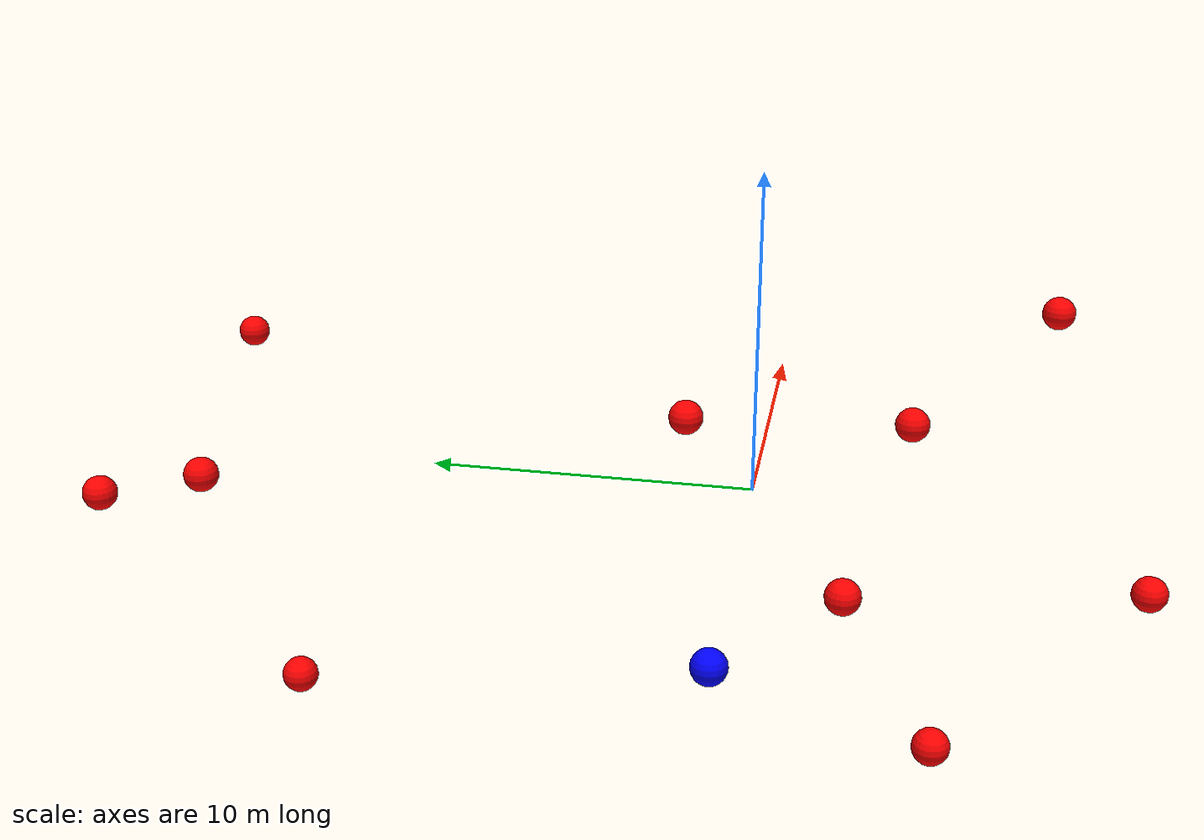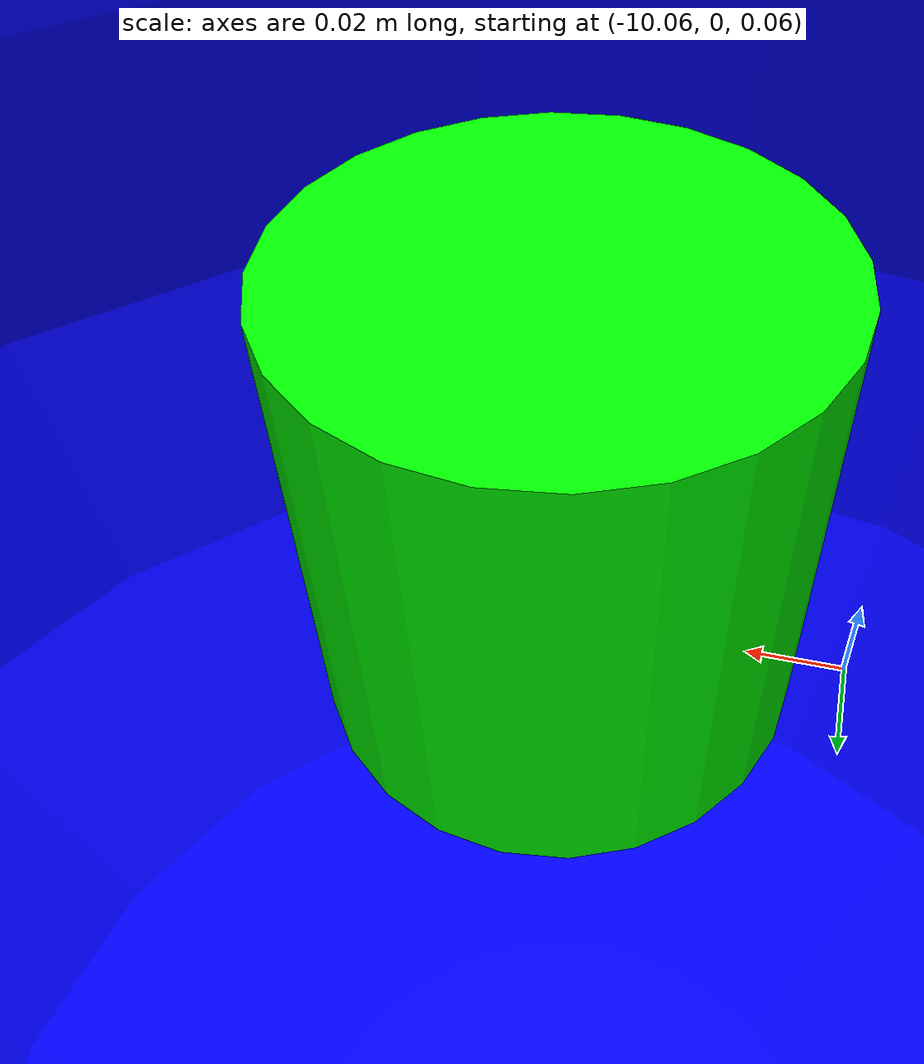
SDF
<?xml version="1.0" ?>
<sdf version="1.8">
    <world name="3d_world">
        <physics name="1ms" type="ode">
            <max_step_size>0.001</max_step_size>
            <real_time_factor>1.0</real_time_factor>
            <real_time_update_rate>1000.0</real_time_update_rate>
        </physics>
        <gravity>0 0 0</gravity>

        <plugin
            filename="gz-sim-physics-system"
            name="gz::sim::v8::systems::Physics">
        </plugin>
        <plugin
            filename="libignition-gazebo-user-commands-system.so"
            name="ignition::gazebo::systems::UserCommands">
        </plugin>
        <plugin
            filename="gz-sim-scene-broadcaster-system"
            name="gz::sim::systems::SceneBroadcaster">
        </plugin>
        <plugin
            filename="gz-sim-sensors-system"
            name="gz::sim::systems::Sensors">
            <render_engine>ogre2</render_engine>
        </plugin>

        <light type="directional" name="sun">
            <cast_shadows>true</cast_shadows>
            <pose>0 0 10 0 0 0</pose>
            <diffuse>0.8 0.8 0.8 1</diffuse>
            <specular>0.2 0.2 0.2 1</specular>
            <attenuation>
                <range>1000</range>
                <constant>0.9</constant>
                <linear>0.01</linear>
                <quadratic>0.001</quadratic>
            </attenuation>
            <direction>-0.5 0.1 -0.9</direction>
        </light>

        <!-- AGENTE -->
        <model name='agente' canonical_link='chassis'>
            <pose relative_to='world'>-10.0 0 0.0 0 0 0</pose>
            <link name='chassis'>
                <pose relative_to='__model__'>0.0 0 0.0 0 0 0</pose>
                <inertial>
                    <mass>1.14395</mass>
                    <inertia>
                        <ixx>0.095329</ixx>
                        <ixy>0</ixy>
                        <ixz>0</ixz>
                        <iyy>0.381317</iyy>
                        <iyz>0</iyz>
                        <izz>0.476646</izz>
                    </inertia>
                </inertial>
                <visual name='visual'>
                    <geometry>
                        <sphere>
                            <radius>0.5</radius>
                        </sphere>
                    </geometry>
                    <material>
                        <ambient>0.0 0.0 1.0 1</ambient>
                        <diffuse>0.0 0.0 1.0 1</diffuse>
                        <specular>0.0 0.0 1.0 1</specular>
                    </material>
                </visual>
                <collision name='collision'>
                    <geometry>
                        <sphere>
                            <radius>0.5</radius>
                        </sphere>
                    </geometry>
                </collision>
                <enable_gravity>false</enable_gravity>
            </link>

            <link name='lidar_link'>
                <pose relative_to='chassis'>0.0 0 0.1 0 0 0</pose>
                <inertial>
                    <mass>0.1</mass>
                    <inertia>
                        <ixx>0.000166667</ixx>
                        <iyy>0.000166667</iyy>
                        <izz>0.000166667</izz>
                    </inertia>
                </inertial>
                <collision name='collision'>
                    <geometry>
                        <cylinder>
                            <radius>0.05</radius>
                            <length>0.1</length>
                        </cylinder>
                    </geometry>
                </collision>
                <visual name='visual'>
                    <geometry>
                        <cylinder>
                            <radius>0.05</radius>
                            <length>0.1</length>
                        </cylinder>
                    </geometry>
                    <material>
                        <ambient>0.0 1.0 0.0 1</ambient>
                        <diffuse>0.0 1.0 0.0 1</diffuse>
                        <specular>0.0 1.0 0.0 1</specular>
                    </material>
                </visual>
                <sensor name="lidar" type="gpu_lidar">
                    <topic>scan</topic>
                    <update_rate>10</update_rate>
                    <lidar>
                        <scan>
                            <horizontal>
                                <samples>5000</samples>
                                <resolution>1</resolution>
                                <min_angle>-3.14159</min_angle>
                                <max_angle>3.14159</max_angle>
                            </horizontal>
                        </scan>
                        <range>
                            <min>0.1</min>
                            <max>10.0</max>
                            <resolution>0.01</resolution>
                        </range>
                    </lidar>
                    <visualize>true</visualize>
                    <always_on>true</always_on>
                    <update_rate>10</update_rate>
                    <pose_frame>lidar</pose_frame>
                </sensor>
                <enable_gravity>false</enable_gravity>
            </link>

            <joint name="lidar_joint" type="fixed">
                <parent>chassis</parent>
                <child>lidar_link</child>
            </joint>

            <plugin
                filename="ignition-gazebo-joint-state-publisher-system"
                name="ignition::gazebo::systems::JointStatePublisher">
            </plugin>
            <plugin
                filename="ignition-gazebo-odometry-publisher-system"
                name="ignition::gazebo::systems::OdometryPublisher">
                <dimensions>3</dimensions>
            </plugin>
            <plugin
                filename="ignition-gazebo-velocity-control-system"
                name="ignition::gazebo::systems::VelocityControl">
                <initial_linear>0.0 0 0</initial_linear>
                <initial_angular>0 0 0.0</initial_angular>
            </plugin>
            <plugin
                filename="libignition-gazebo-pose-publisher-system.so"
                name="ignition::gazebo::systems::PosePublisher">
                <topic>/agente/pose</topic>
                <frame_id>agente</frame_id>
                <update_rate>30</update_rate>
            </plugin>
        </model>

        <!-- OBSTACLE 1 -->
        <model name='obstacle_1' canonical_link='obstacle'>
            <static>false</static>
            <pose relative_to='world'>-6.23 18.12 1.35 0 0 0</pose>
            <link name='obstacle'>
                <pose relative_to='__model__'>0.0 0 0.0 0 0 0</pose>
                <visual name='visual'>
                    <geometry>
                        <sphere>
                            <radius>0.50</radius>
                        </sphere>
                    </geometry>
                    <material>
                        <ambient>1.0 0.0 0.0 1</ambient>
                        <diffuse>1.0 0.0 0.0 1</diffuse>
                        <specular>1.0 0.0 0.0 1</specular>
                    </material>
                </visual>
                <collision name='collision'>
                    <geometry>
                        <sphere>
                            <radius>0.50</radius>
                        </sphere>
                    </geometry>
                </collision>
                <enable_gravity>false</enable_gravity>
            </link>

            <plugin
                filename="ignition-gazebo-velocity-control-system"
                name="ignition::gazebo::systems::VelocityControl">
                <initial_linear>0.86 -1.80 -0.13</initial_linear>
                <initial_angular>0 0 0</initial_angular>
            </plugin>

            <plugin
                filename="ignition-gazebo-odometry-publisher-system"
                name="ignition::gazebo::systems::OdometryPublisher">
                <dimensions>3</dimensions>
            </plugin>
        </model>

        <!-- OBSTACLE 2 -->
        <model name='obstacle_2' canonical_link='obstacle'>
            <static>false</static>
            <pose relative_to='world'>-8.18 11.71 -2.77 0 0 0</pose>
            <link name='obstacle'>
                <pose relative_to='__model__'>0.0 0 0.0 0 0 0</pose>
                <visual name='visual'>
                    <geometry>
                        <sphere>
                            <radius>0.50</radius>
                        </sphere>
                    </geometry>
                    <material>
                        <ambient>1.0 0.0 0.0 1</ambient>
                        <diffuse>1.0 0.0 0.0 1</diffuse>
                        <specular>1.0 0.0 0.0 1</specular>
                    </material>
                </visual>
                <collision name='collision'>
                    <geometry>
                        <sphere>
                            <radius>0.50</radius>
                        </sphere>
                    </geometry>
                </collision>
                <enable_gravity>false</enable_gravity>
            </link>

            <plugin
                filename="ignition-gazebo-velocity-control-system"
                name="ignition::gazebo::systems::VelocityControl">
                <initial_linear>0.93 -1.72 0.41</initial_linear>
                <initial_angular>0 0 0</initial_angular>
            </plugin>

            <plugin
                filename="ignition-gazebo-odometry-publisher-system"
                name="ignition::gazebo::systems::OdometryPublisher">
                <dimensions>3</dimensions>
            </plugin>
        </model>

        <!-- OBSTACLE 3 -->
        <model name='obstacle_3' canonical_link='obstacle'>
            <static>false</static>
            <pose relative_to='world'>4.79 17.65 2.06 0 0 0</pose>
            <link name='obstacle'>
                <pose relative_to='__model__'>0.0 0 0.0 0 0 0</pose>
                <visual name='visual'>
                    <geometry>
                        <sphere>
                            <radius>0.50</radius>
                        </sphere>
                    </geometry>
                    <material>
                        <ambient>1.0 0.0 0.0 1</ambient>
                        <diffuse>1.0 0.0 0.0 1</diffuse>
                        <specular>1.0 0.0 0.0 1</specular>
                    </material>
                </visual>
                <collision name='collision'>
                    <geometry>
                        <sphere>
                            <radius>0.50</radius>
                        </sphere>
                    </geometry>
                </collision>
                <enable_gravity>false</enable_gravity>
            </link>

            <plugin
                filename="ignition-gazebo-velocity-control-system"
                name="ignition::gazebo::systems::VelocityControl">
                <initial_linear>-0.62 -1.89 -0.22</initial_linear>
                <initial_angular>0 0 0</initial_angular>
            </plugin>

            <plugin
                filename="ignition-gazebo-odometry-publisher-system"
                name="ignition::gazebo::systems::OdometryPublisher">
                <dimensions>3</dimensions>
            </plugin>
        </model>

        <!-- OBSTACLE 4 -->
        <model name='obstacle_4' canonical_link='obstacle'>
            <static>false</static>
            <pose relative_to='world'>-4.27 -11.30 0.02 0 0 0</pose>
            <link name='obstacle'>
                <pose relative_to='__model__'>0.0 0 0.0 0 0 0</pose>
                <visual name='visual'>
                    <geometry>
                        <sphere>
                            <radius>0.50</radius>
                        </sphere>
                    </geometry>
                    <material>
                        <ambient>1.0 0.0 0.0 1</ambient>
                        <diffuse>1.0 0.0 0.0 1</diffuse>
                        <specular>1.0 0.0 0.0 1</specular>
                    </material>
                </visual>
                <collision name='collision'>
                    <geometry>
                        <sphere>
                            <radius>0.50</radius>
                        </sphere>
                    </geometry>
                </collision>
                <enable_gravity>false</enable_gravity>
            </link>

            <plugin
                filename="ignition-gazebo-velocity-control-system"
                name="ignition::gazebo::systems::VelocityControl">
                <initial_linear>0.89 1.79 -0.00</initial_linear>
                <initial_angular>0 0 0</initial_angular>
            </plugin>

            <plugin
                filename="ignition-gazebo-odometry-publisher-system"
                name="ignition::gazebo::systems::OdometryPublisher">
                <dimensions>3</dimensions>
            </plugin>
        </model>

        <!-- OBSTACLE 5 -->
        <model name='obstacle_5' canonical_link='obstacle'>
            <static>false</static>
            <pose relative_to='world'>-5.82 15.15 2.01 0 0 0</pose>
            <link name='obstacle'>
                <pose relative_to='__model__'>0.0 0 0.0 0 0 0</pose>
                <visual name='visual'>
                    <geometry>
                        <sphere>
                            <radius>0.50</radius>
                        </sphere>
                    </geometry>
                    <material>
                        <ambient>1.0 0.0 0.0 1</ambient>
                        <diffuse>1.0 0.0 0.0 1</diffuse>
                        <specular>1.0 0.0 0.0 1</specular>
                    </material>
                </visual>
                <collision name='collision'>
                    <geometry>
                        <sphere>
                            <radius>0.50</radius>
                        </sphere>
                    </geometry>
                </collision>
                <enable_gravity>false</enable_gravity>
            </link>

            <plugin
                filename="ignition-gazebo-velocity-control-system"
                name="ignition::gazebo::systems::VelocityControl">
                <initial_linear>0.26 -1.97 -0.26</initial_linear>
                <initial_angular>0 0 0</initial_angular>
            </plugin>

            <plugin
                filename="ignition-gazebo-odometry-publisher-system"
                name="ignition::gazebo::systems::OdometryPublisher">
                <dimensions>3</dimensions>
            </plugin>
        </model>

        <!-- OBSTACLE 6 -->
        <model name='obstacle_6' canonical_link='obstacle'>
            <static>false</static>
            <pose relative_to='world'>-1.02 -4.63 3.05 0 0 0</pose>
            <link name='obstacle'>
                <pose relative_to='__model__'>0.0 0 0.0 0 0 0</pose>
                <visual name='visual'>
                    <geometry>
                        <sphere>
                            <radius>0.50</radius>
                        </sphere>
                    </geometry>
                    <material>
                        <ambient>1.0 0.0 0.0 1</ambient>
                        <diffuse>1.0 0.0 0.0 1</diffuse>
                        <specular>1.0 0.0 0.0 1</specular>
                    </material>
                </visual>
                <collision name='collision'>
                    <geometry>
                        <sphere>
                            <radius>0.50</radius>
                        </sphere>
                    </geometry>
                </collision>
                <enable_gravity>false</enable_gravity>
            </link>

            <plugin
                filename="ignition-gazebo-velocity-control-system"
                name="ignition::gazebo::systems::VelocityControl">
                <initial_linear>0.85 0.85 -0.56</initial_linear>
                <initial_angular>0 0 0</initial_angular>
            </plugin>

            <plugin
                filename="ignition-gazebo-odometry-publisher-system"
                name="ignition::gazebo::systems::OdometryPublisher">
                <dimensions>3</dimensions>
            </plugin>
        </model>

        <!-- OBSTACLE 7 -->
        <model name='obstacle_7' canonical_link='obstacle'>
            <static>false</static>
            <pose relative_to='world'>-2.32 1.77 3.34 0 0 0</pose>
            <link name='obstacle'>
                <pose relative_to='__model__'>0.0 0 0.0 0 0 0</pose>
                <visual name='visual'>
                    <geometry>
                        <sphere>
                            <radius>0.50</radius>
                        </sphere>
                    </geometry>
                    <material>
                        <ambient>1.0 0.0 0.0 1</ambient>
                        <diffuse>1.0 0.0 0.0 1</diffuse>
                        <specular>1.0 0.0 0.0 1</specular>
                    </material>
                </visual>
                <collision name='collision'>
                    <geometry>
                        <sphere>
                            <radius>0.50</radius>
                        </sphere>
                    </geometry>
                </collision>
                <enable_gravity>false</enable_gravity>
            </link>

            <plugin
                filename="ignition-gazebo-velocity-control-system"
                name="ignition::gazebo::systems::VelocityControl">
                <initial_linear>1.11 -0.32 -0.60</initial_linear>
                <initial_angular>0 0 0</initial_angular>
            </plugin>

            <plugin
                filename="ignition-gazebo-odometry-publisher-system"
                name="ignition::gazebo::systems::OdometryPublisher">
                <dimensions>3</dimensions>
            </plugin>
        </model>

        <!-- OBSTACLE 8 -->
        <model name='obstacle_8' canonical_link='obstacle'>
            <static>false</static>
            <pose relative_to='world'>-9.40 -5.68 -2.11 0 0 0</pose>
            <link name='obstacle'>
                <pose relative_to='__model__'>0.0 0 0.0 0 0 0</pose>
                <visual name='visual'>
                    <geometry>
                        <sphere>
                            <radius>0.50</radius>
                        </sphere>
                    </geometry>
                    <material>
                        <ambient>1.0 0.0 0.0 1</ambient>
                        <diffuse>1.0 0.0 0.0 1</diffuse>
                        <specular>1.0 0.0 0.0 1</specular>
                    </material>
                </visual>
                <collision name='collision'>
                    <geometry>
                        <sphere>
                            <radius>0.50</radius>
                        </sphere>
                    </geometry>
                </collision>
                <enable_gravity>false</enable_gravity>
            </link>

            <plugin
                filename="ignition-gazebo-velocity-control-system"
                name="ignition::gazebo::systems::VelocityControl">
                <initial_linear>1.84 0.74 0.27</initial_linear>
                <initial_angular>0 0 0</initial_angular>
            </plugin>

            <plugin
                filename="ignition-gazebo-odometry-publisher-system"
                name="ignition::gazebo::systems::OdometryPublisher">
                <dimensions>3</dimensions>
            </plugin>
        </model>

        <!-- OBSTACLE 9 -->
        <model name='obstacle_9' canonical_link='obstacle'>
            <static>false</static>
            <pose relative_to='world'>-7.22 -3.15 0.77 0 0 0</pose>
            <link name='obstacle'>
                <pose relative_to='__model__'>0.0 0 0.0 0 0 0</pose>
                <visual name='visual'>
                    <geometry>
                        <sphere>
                            <radius>0.50</radius>
                        </sphere>
                    </geometry>
                    <material>
                        <ambient>1.0 0.0 0.0 1</ambient>
                        <diffuse>1.0 0.0 0.0 1</diffuse>
                        <specular>1.0 0.0 0.0 1</specular>
                    </material>
                </visual>
                <collision name='collision'>
                    <geometry>
                        <sphere>
                            <radius>0.50</radius>
                        </sphere>
                    </geometry>
                </collision>
                <enable_gravity>false</enable_gravity>
            </link>

            <plugin
                filename="ignition-gazebo-velocity-control-system"
                name="ignition::gazebo::systems::VelocityControl">
                <initial_linear>1.86 0.71 -0.17</initial_linear>
                <initial_angular>0 0 0</initial_angular>
            </plugin>

            <plugin
                filename="ignition-gazebo-odometry-publisher-system"
                name="ignition::gazebo::systems::OdometryPublisher">
                <dimensions>3</dimensions>
            </plugin>
        </model>

        <!-- OBSTACLE 10 -->
        <model name='obstacle_10' canonical_link='obstacle'>
            <static>false</static>
            <pose relative_to='world'>3.79 -8.76 4.94 0 0 0</pose>
            <link name='obstacle'>
                <pose relative_to='__model__'>0.0 0 0.0 0 0 0</pose>
                <visual name='visual'>
                    <geometry>
                        <sphere>
                            <radius>0.50</radius>
                        </sphere>
                    </geometry>
                    <material>
                        <ambient>1.0 0.0 0.0 1</ambient>
                        <diffuse>1.0 0.0 0.0 1</diffuse>
                        <specular>1.0 0.0 0.0 1</specular>
                    </material>
                </visual>
                <collision name='collision'>
                    <geometry>
                        <sphere>
                            <radius>0.50</radius>
                        </sphere>
                    </geometry>
                </collision>
                <enable_gravity>false</enable_gravity>
            </link>

            <plugin
                filename="ignition-gazebo-velocity-control-system"
                name="ignition::gazebo::systems::VelocityControl">
                <initial_linear>-0.75 1.62 -0.91</initial_linear>
                <initial_angular>0 0 0</initial_angular>
            </plugin>

            <plugin
                filename="ignition-gazebo-odometry-publisher-system"
                name="ignition::gazebo::systems::OdometryPublisher">
                <dimensions>3</dimensions>
            </plugin>
        </model>

    </world>
</sdf>
